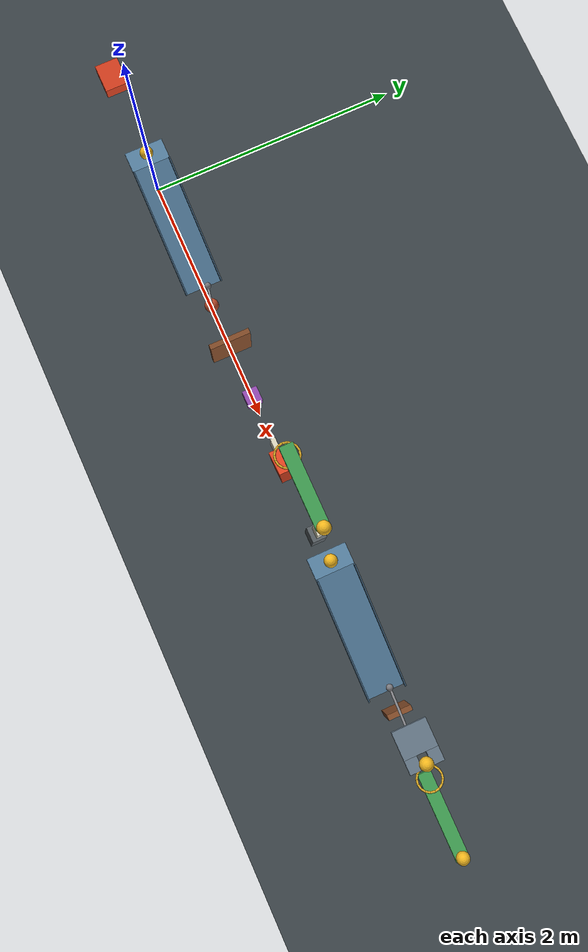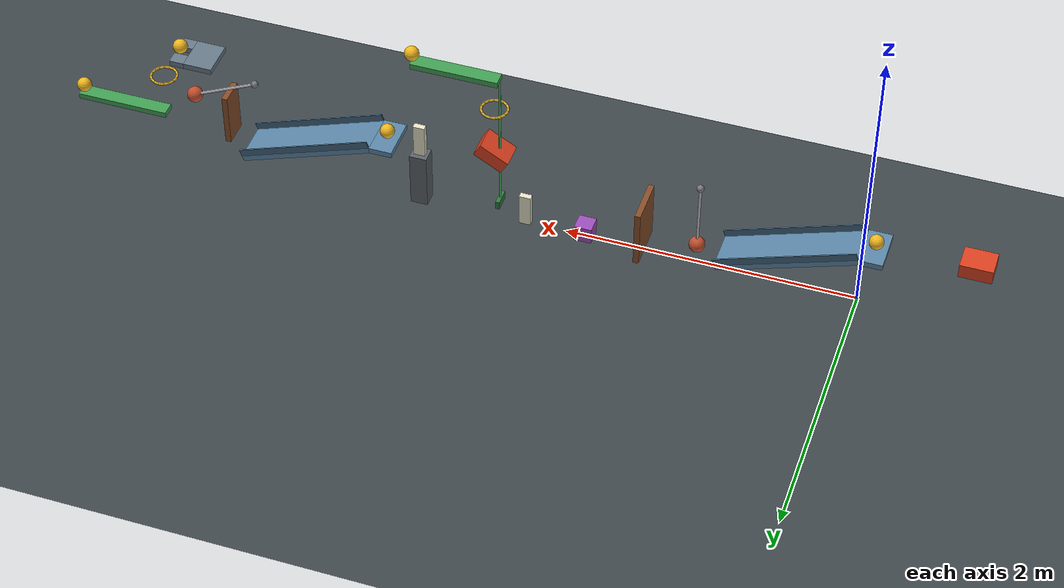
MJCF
<mujoco model="passive_chain_candidate">
  <compiler angle="degree" autolimits="true"/>
  <option timestep="0.002" gravity="0 0 -9.81" integrator="implicitfast" cone="elliptic" iterations="100" o_solref="0.008 0.690107" o_solimp="0.95 0.95 0.001 0.5 2" o_friction="0.68 0.005 0.0001">
    <flag override="enable"/>
  </option>
  <size nconmax="400" njmax="2000"/>
  <visual>
    <headlight ambient="0.45 0.45 0.45" diffuse="0.7 0.7 0.7" specular="0.15 0.15 0.15"/>
    <map znear="0.01" zfar="50"/>
  </visual>

  <!-- All keyframe velocities are zero. -->
  <!-- Contact damping approximates restitution 0.05; it is not an exact restitution law. -->
  <!-- Positive launcher angles lower their left ends and raise their right ends. -->
  <!-- Pendulum mass includes a heavy pivot hub, a light rigid rod, and a contact bob. -->

  <worldbody>
    <light name="main_light" pos="2 -3 6" dir="0 0 -1"/>
    <camera name="overview" pos="3 -7 4" xyaxes="1 0 0 0 0.45 0.893"/>
    <geom name="floor" type="plane" size="10 5 0.1" friction="0.68 0.005 0.0001" rgba="0.24 0.27 0.29 1"/>

    <!-- The compression-only axial spring acts over the first 0.20 m. -->
    <!-- Cart front to ball surface is initially 0.50 m. -->
    <body name="cart1" pos="-0.74 0 0.542020">
      <joint name="cart1_slide" type="slide" axis="1 0 0" range="0 0.65" damping="0.20" solreflimit="0.004 1"/>
      <geom name="cart1_box" type="box" size="0.11 0.09 0.05" mass="0.50" friction="0.68 0.005 0.0001" rgba="0.85 0.25 0.12 1"/>
    </body>

    <body name="ball1" pos="-0.08 0 0.542020">
      <freejoint name="ball1_free"/>
      <geom name="ball1_sphere" type="sphere" size="0.05" mass="0.20" friction="0.68 0.005 0.0001" rgba="0.95 0.72 0.12 1"/>
    </body>

    <!-- Deck upper surface: high end (0,0,0.492020), low end (0.939693,0,0.15). -->
    <body name="ramp1" pos="0 0 0">
      <geom name="ramp1_deck" type="box" pos="0.463006 0 0.302216" euler="0 20 0" size="0.50 0.15 0.02" friction="0.68 0.005 0.0001" rgba="0.35 0.52 0.65 1"/>
      <geom name="ramp1_start_platform" type="box" pos="-0.08 0 0.472020" size="0.08 0.15 0.02" friction="0.68 0.005 0.0001" rgba="0.35 0.52 0.65 1"/>
      <geom name="ramp1_rail_left" type="box" pos="0.478397 -0.145 0.344502" euler="0 20 0" size="0.50 0.005 0.025" friction="0.68 0.005 0.0001" rgba="0.25 0.38 0.48 1"/>
      <geom name="ramp1_rail_right" type="box" pos="0.478397 0.145 0.344502" euler="0 20 0" size="0.50 0.005 0.025" friction="0.68 0.005 0.0001" rgba="0.25 0.38 0.48 1"/>
    </body>

    <!-- The near surface of the initial bob is 0.10 m beyond the ramp end. -->
    <body name="pendulum1" pos="1.094693 0 0.66">
      <joint name="pendulum1_hinge" type="hinge" axis="0 -1 0" range="0 40" damping="0.04" solreflimit="0.004 1"/>
      <geom name="pendulum1_hub" type="sphere" size="0.025" mass="0.299" friction="0.68 0.005 0.0001" rgba="0.48 0.48 0.50 1"/>
      <geom name="pendulum1_rod" type="capsule" fromto="0 0 0 0 0 -0.50" size="0.009" mass="0.001" friction="0.68 0.005 0.0001" rgba="0.70 0.70 0.72 1"/>
      <geom name="pendulum1_bob" type="sphere" pos="0 0 -0.50" size="0.055" mass="0.050" friction="0.68 0.005 0.0001" rgba="0.76 0.31 0.18 1"/>
    </body>

    <!-- Upright bottom-hinged door releases gravitational energy when struck. -->
    <body name="door1" pos="1.465 0 0.02">
      <joint name="door1_hinge" type="hinge" axis="0 1 0" range="0 70" damping="0.04" solreflimit="0.004 1"/>
      <geom name="door1_panel" type="box" pos="0 0 0.21" size="0.02 0.16 0.21" mass="0.45" friction="0.68 0.005 0.0001" rgba="0.52 0.30 0.16 1"/>
    </body>

    <body name="block1" pos="1.865 0 0.060">
      <freejoint name="block1_free"/>
      <geom name="block1_cube" type="box" size="0.06 0.06 0.06" mass="0.35" friction="0.68 0.005 0.0001" rgba="0.60 0.30 0.72 1"/>
    </body>

    <!-- Block right face reaches domino left face after 0.32 m. -->
    <body name="domino1" pos="2.285 0 0.120">
      <freejoint name="domino1_free"/>
      <geom name="domino1_box" type="box" size="0.04 0.02 0.12" mass="0.25" friction="0.68 0.005 0.0001" rgba="0.90 0.88 0.78 1"/>
    </body>

    <!-- The low striker lies 0.18 m beyond domino1's initial center. -->
    <!-- The assist torque is initially just below ball2's opposing gravity torque. -->
    <body name="lever1" pos="2.765 0 1.20">
      <inertial pos="0 0 0" mass="0.50" diaginertia="0.000483333 0.015066667 0.015416667"/>
      <joint name="lever1_hinge" type="hinge" axis="0 -1 0" range="0 45" damping="0.04" stiffness="0.08" springref="420" solreflimit="0.004 1"/>
      <geom name="lever1_beam" type="box" size="0.30 0.05 0.02" friction="0.68 0.005 0.0001" rgba="0.25 0.62 0.32 1"/>
      <geom name="lever1_striker_stem" type="capsule" fromto="-0.30 0 0 -0.30 0 -1.02" size="0.008" friction="0.68 0.005 0.0001" rgba="0.25 0.62 0.32 1"/>
      <geom name="lever1_striker_pad" type="box" pos="-0.30 0 -1.05" size="0.015 0.06 0.03" friction="0.68 0.005 0.0001" rgba="0.18 0.46 0.24 1"/>
    </body>

    <body name="ball2" pos="3.065 0 1.270">
      <freejoint name="ball2_free"/>
      <geom name="ball2_sphere" type="sphere" size="0.05" mass="0.20" friction="0.68 0.005 0.0001" rgba="0.95 0.72 0.12 1"/>
    </body>

    <!-- Sixteen capsule segments give a minimum clear diameter of 0.16 m. -->
    <body name="ring1" pos="2.50 0 0.950">
      <geom name="ring1_segment01" type="capsule" fromto="0.089724 0 0 0.082894 0.034336 0" size="0.008" friction="0.68 0.005 0.0001" rgba="0.88 0.68 0.15 1"/>
      <geom name="ring1_segment02" type="capsule" fromto="0.082894 0.034336 0 0.063445 0.063445 0" size="0.008" friction="0.68 0.005 0.0001" rgba="0.88 0.68 0.15 1"/>
      <geom name="ring1_segment03" type="capsule" fromto="0.063445 0.063445 0 0.034336 0.082894 0" size="0.008" friction="0.68 0.005 0.0001" rgba="0.88 0.68 0.15 1"/>
      <geom name="ring1_segment04" type="capsule" fromto="0.034336 0.082894 0 0 0.089724 0" size="0.008" friction="0.68 0.005 0.0001" rgba="0.88 0.68 0.15 1"/>
      <geom name="ring1_segment05" type="capsule" fromto="0 0.089724 0 -0.034336 0.082894 0" size="0.008" friction="0.68 0.005 0.0001" rgba="0.88 0.68 0.15 1"/>
      <geom name="ring1_segment06" type="capsule" fromto="-0.034336 0.082894 0 -0.063445 0.063445 0" size="0.008" friction="0.68 0.005 0.0001" rgba="0.88 0.68 0.15 1"/>
      <geom name="ring1_segment07" type="capsule" fromto="-0.063445 0.063445 0 -0.082894 0.034336 0" size="0.008" friction="0.68 0.005 0.0001" rgba="0.88 0.68 0.15 1"/>
      <geom name="ring1_segment08" type="capsule" fromto="-0.082894 0.034336 0 -0.089724 0 0" size="0.008" friction="0.68 0.005 0.0001" rgba="0.88 0.68 0.15 1"/>
      <geom name="ring1_segment09" type="capsule" fromto="-0.089724 0 0 -0.082894 -0.034336 0" size="0.008" friction="0.68 0.005 0.0001" rgba="0.88 0.68 0.15 1"/>
      <geom name="ring1_segment10" type="capsule" fromto="-0.082894 -0.034336 0 -0.063445 -0.063445 0" size="0.008" friction="0.68 0.005 0.0001" rgba="0.88 0.68 0.15 1"/>
      <geom name="ring1_segment11" type="capsule" fromto="-0.063445 -0.063445 0 -0.034336 -0.082894 0" size="0.008" friction="0.68 0.005 0.0001" rgba="0.88 0.68 0.15 1"/>
      <geom name="ring1_segment12" type="capsule" fromto="-0.034336 -0.082894 0 0 -0.089724 0" size="0.008" friction="0.68 0.005 0.0001" rgba="0.88 0.68 0.15 1"/>
      <geom name="ring1_segment13" type="capsule" fromto="0 -0.089724 0 0.034336 -0.082894 0" size="0.008" friction="0.68 0.005 0.0001" rgba="0.88 0.68 0.15 1"/>
      <geom name="ring1_segment14" type="capsule" fromto="0.034336 -0.082894 0 0.063445 -0.063445 0" size="0.008" friction="0.68 0.005 0.0001" rgba="0.88 0.68 0.15 1"/>
      <geom name="ring1_segment15" type="capsule" fromto="0.063445 -0.063445 0 0.082894 -0.034336 0" size="0.008" friction="0.68 0.005 0.0001" rgba="0.88 0.68 0.15 1"/>
      <geom name="ring1_segment16" type="capsule" fromto="0.082894 -0.034336 0 0.089724 0 0" size="0.008" friction="0.68 0.005 0.0001" rgba="0.88 0.68 0.15 1"/>
    </body>

    <!-- Inclined cart top converts the falling ball's impulse into +x motion. -->
    <!-- At x=2.50, sphere contact occurs with its center at z=0.70. -->
    <body name="cart2" pos="2.50 0 0.584530">
      <joint name="cart2_slide" type="slide" axis="1 0 0" range="0 0.58" damping="0.20" solreflimit="0.004 1"/>
      <geom name="cart2_box" type="box" euler="0 -30 0" size="0.11 0.09 0.05" mass="0.50" friction="0.68 0.005 0.0001" rgba="0.85 0.25 0.12 1"/>
    </body>

    <body name="domino2_base" pos="3.029217 0 0.205">
      <geom name="domino2_base_box" type="box" size="0.060 0.055 0.205" friction="0.68 0.005 0.0001" rgba="0.35 0.38 0.40 1"/>
    </body>

    <body name="domino2" pos="3.029217 0 0.530">
      <freejoint name="domino2_free"/>
      <geom name="domino2_box" type="box" size="0.04 0.02 0.12" mass="0.25" friction="0.68 0.005 0.0001" rgba="0.90 0.88 0.78 1"/>
    </body>

    <body name="ball3" pos="3.259217 0 0.542020">
      <freejoint name="ball3_free"/>
      <geom name="ball3_sphere" type="sphere" size="0.05" mass="0.20" friction="0.68 0.005 0.0001" rgba="0.95 0.72 0.12 1"/>
    </body>

    <body name="ramp2" pos="0 0 0">
      <geom name="ramp2_deck" type="box" pos="3.802223 0 0.302216" euler="0 20 0" size="0.50 0.15 0.02" friction="0.68 0.005 0.0001" rgba="0.35 0.52 0.65 1"/>
      <geom name="ramp2_start_platform" type="box" pos="3.259217 0 0.472020" size="0.08 0.15 0.02" friction="0.68 0.005 0.0001" rgba="0.35 0.52 0.65 1"/>
      <geom name="ramp2_rail_left" type="box" pos="3.817614 -0.145 0.344502" euler="0 20 0" size="0.50 0.005 0.025" friction="0.68 0.005 0.0001" rgba="0.25 0.38 0.48 1"/>
      <geom name="ramp2_rail_right" type="box" pos="3.817614 0.145 0.344502" euler="0 20 0" size="0.50 0.005 0.025" friction="0.68 0.005 0.0001" rgba="0.25 0.38 0.48 1"/>
    </body>

    <!-- Flap near face is 0.10 m beyond ramp2's low edge. -->
    <body name="flap1" pos="4.398910 0 0.58">
      <joint name="flap1_hinge" type="hinge" axis="0 -1 0" range="0 60" damping="0.04" solreflimit="0.004 1"/>
      <geom name="flap1_panel" type="box" pos="0 0 -0.19" size="0.02 0.09 0.19" mass="0.28" friction="0.68 0.005 0.0001" rgba="0.52 0.30 0.16 1"/>
    </body>

    <!-- Initially inclined 65 degrees; the lower joint stop holds it at rest. -->
    <body name="pendulum2" pos="4.205800 0 0.691309" euler="0 -65 0">
      <joint name="pendulum2_hinge" type="hinge" axis="0 -1 0" range="0 38" damping="0.04" solreflimit="0.004 1"/>
      <geom name="pendulum2_hub" type="sphere" size="0.025" mass="0.299" friction="0.68 0.005 0.0001" rgba="0.48 0.48 0.50 1"/>
      <geom name="pendulum2_rod" type="capsule" fromto="0 0 0 0 0 -0.50" size="0.009" mass="0.001" friction="0.68 0.005 0.0001" rgba="0.70 0.70 0.72 1"/>
      <geom name="pendulum2_bob" type="sphere" pos="0 0 -0.50" size="0.055" mass="0.050" friction="0.68 0.005 0.0001" rgba="0.76 0.31 0.18 1"/>
    </body>

    <!-- Shelf envelope is 0.30 by 0.25 by 0.04 m, with top surface at z=0.85. -->
    <!-- A narrow open-ended slot admits the approaching pendulum bob. -->
    <body name="shelf1" pos="4.608954 0 0.83">
      <geom name="shelf1_main" type="box" pos="-0.05 0 0" size="0.10 0.125 0.02" friction="0.68 0.005 0.0001" rgba="0.40 0.47 0.53 1"/>
      <geom name="shelf1_left_rail" type="box" pos="0.10 -0.08 0" size="0.05 0.045 0.02" friction="0.68 0.005 0.0001" rgba="0.40 0.47 0.53 1"/>
      <geom name="shelf1_right_rail" type="box" pos="0.10 0.08 0" size="0.05 0.045 0.02" friction="0.68 0.005 0.0001" rgba="0.40 0.47 0.53 1"/>
    </body>

    <body name="ball4" pos="4.728954 0 0.885707">
      <freejoint name="ball4_free"/>
      <geom name="ball4_sphere" type="sphere" size="0.05" mass="0.20" friction="0.68 0.005 0.0001" rgba="0.95 0.72 0.12 1"/>
    </body>

    <body name="ring2" pos="4.878954 0 0.585707">
      <geom name="ring2_segment01" type="capsule" fromto="0.089724 0 0 0.082894 0.034336 0" size="0.008" friction="0.68 0.005 0.0001" rgba="0.88 0.68 0.15 1"/>
      <geom name="ring2_segment02" type="capsule" fromto="0.082894 0.034336 0 0.063445 0.063445 0" size="0.008" friction="0.68 0.005 0.0001" rgba="0.88 0.68 0.15 1"/>
      <geom name="ring2_segment03" type="capsule" fromto="0.063445 0.063445 0 0.034336 0.082894 0" size="0.008" friction="0.68 0.005 0.0001" rgba="0.88 0.68 0.15 1"/>
      <geom name="ring2_segment04" type="capsule" fromto="0.034336 0.082894 0 0 0.089724 0" size="0.008" friction="0.68 0.005 0.0001" rgba="0.88 0.68 0.15 1"/>
      <geom name="ring2_segment05" type="capsule" fromto="0 0.089724 0 -0.034336 0.082894 0" size="0.008" friction="0.68 0.005 0.0001" rgba="0.88 0.68 0.15 1"/>
      <geom name="ring2_segment06" type="capsule" fromto="-0.034336 0.082894 0 -0.063445 0.063445 0" size="0.008" friction="0.68 0.005 0.0001" rgba="0.88 0.68 0.15 1"/>
      <geom name="ring2_segment07" type="capsule" fromto="-0.063445 0.063445 0 -0.082894 0.034336 0" size="0.008" friction="0.68 0.005 0.0001" rgba="0.88 0.68 0.15 1"/>
      <geom name="ring2_segment08" type="capsule" fromto="-0.082894 0.034336 0 -0.089724 0 0" size="0.008" friction="0.68 0.005 0.0001" rgba="0.88 0.68 0.15 1"/>
      <geom name="ring2_segment09" type="capsule" fromto="-0.089724 0 0 -0.082894 -0.034336 0" size="0.008" friction="0.68 0.005 0.0001" rgba="0.88 0.68 0.15 1"/>
      <geom name="ring2_segment10" type="capsule" fromto="-0.082894 -0.034336 0 -0.063445 -0.063445 0" size="0.008" friction="0.68 0.005 0.0001" rgba="0.88 0.68 0.15 1"/>
      <geom name="ring2_segment11" type="capsule" fromto="-0.063445 -0.063445 0 -0.034336 -0.082894 0" size="0.008" friction="0.68 0.005 0.0001" rgba="0.88 0.68 0.15 1"/>
      <geom name="ring2_segment12" type="capsule" fromto="-0.034336 -0.082894 0 0 -0.089724 0" size="0.008" friction="0.68 0.005 0.0001" rgba="0.88 0.68 0.15 1"/>
      <geom name="ring2_segment13" type="capsule" fromto="0 -0.089724 0 0.034336 -0.082894 0" size="0.008" friction="0.68 0.005 0.0001" rgba="0.88 0.68 0.15 1"/>
      <geom name="ring2_segment14" type="capsule" fromto="0.034336 -0.082894 0 0.063445 -0.063445 0" size="0.008" friction="0.68 0.005 0.0001" rgba="0.88 0.68 0.15 1"/>
      <geom name="ring2_segment15" type="capsule" fromto="0.063445 -0.063445 0 0.082894 -0.034336 0" size="0.008" friction="0.68 0.005 0.0001" rgba="0.88 0.68 0.15 1"/>
      <geom name="ring2_segment16" type="capsule" fromto="0.082894 -0.034336 0 0.089724 0 0" size="0.008" friction="0.68 0.005 0.0001" rgba="0.88 0.68 0.15 1"/>
    </body>

    <!-- A ball on the initial beam has center z=0.335707, 0.25 m below ring2. -->
    <body name="seesaw1" pos="5.203954 0 0.265707">
      <joint name="seesaw1_hinge" type="hinge" axis="0 -1 0" range="0 42" damping="0.04" solreflimit="0.004 1"/>
      <geom name="seesaw1_beam" type="box" size="0.325 0.05 0.02" mass="0.55" friction="0.68 0.005 0.0001" rgba="0.25 0.62 0.32 1"/>
    </body>

    <body name="ball5" pos="5.503954 0 0.335707">
      <freejoint name="ball5_free"/>
      <geom name="ball5_sphere" type="sphere" size="0.05" mass="0.20" friction="0.68 0.005 0.0001" rgba="0.95 0.72 0.12 1"/>
    </body>
  </worldbody>

  <tendon>
    <fixed name="cart1_axial_spring" stiffness="18" damping="0" springlength="0.20 10">
      <joint joint="cart1_slide" coef="1"/>
    </fixed>
  </tendon>

  <keyframe>
    <key name="start"/>
  </keyframe>
</mujoco>
